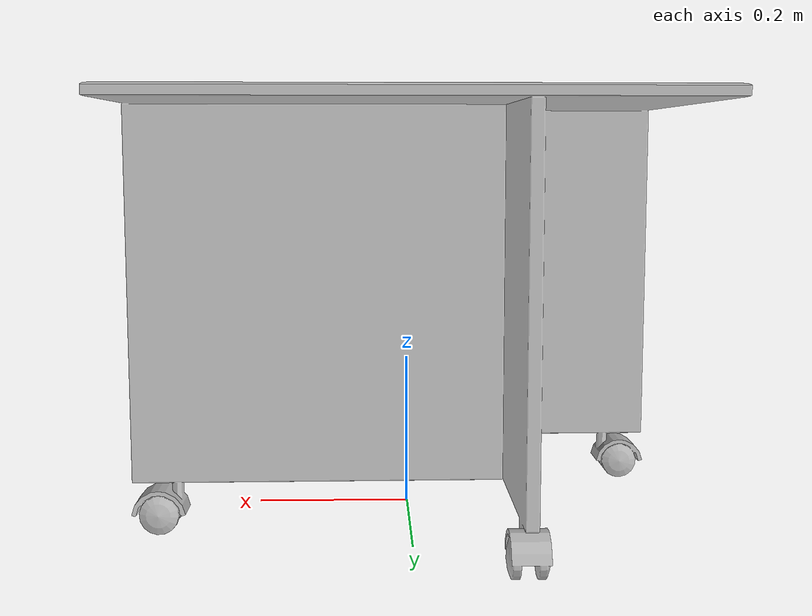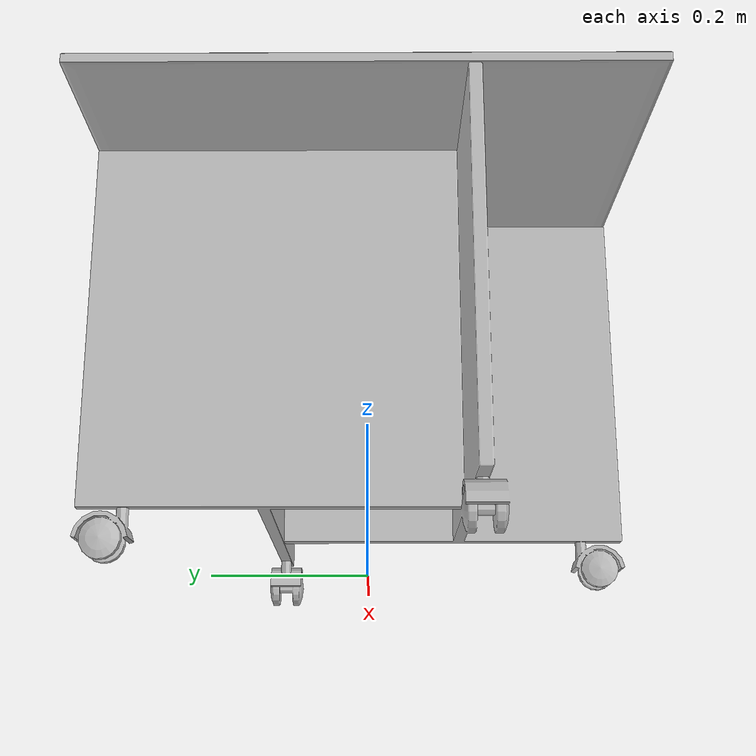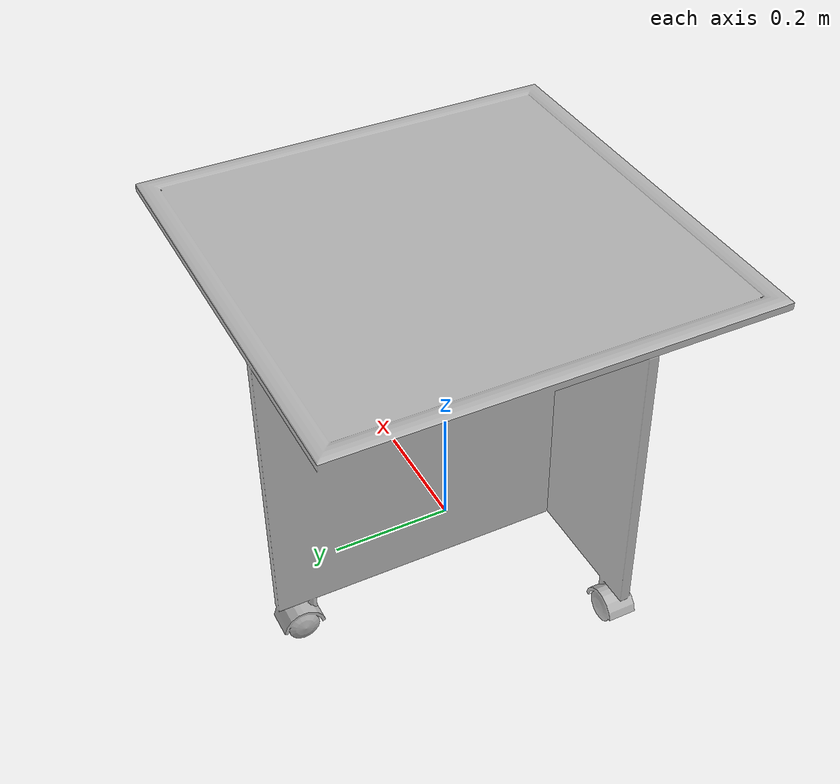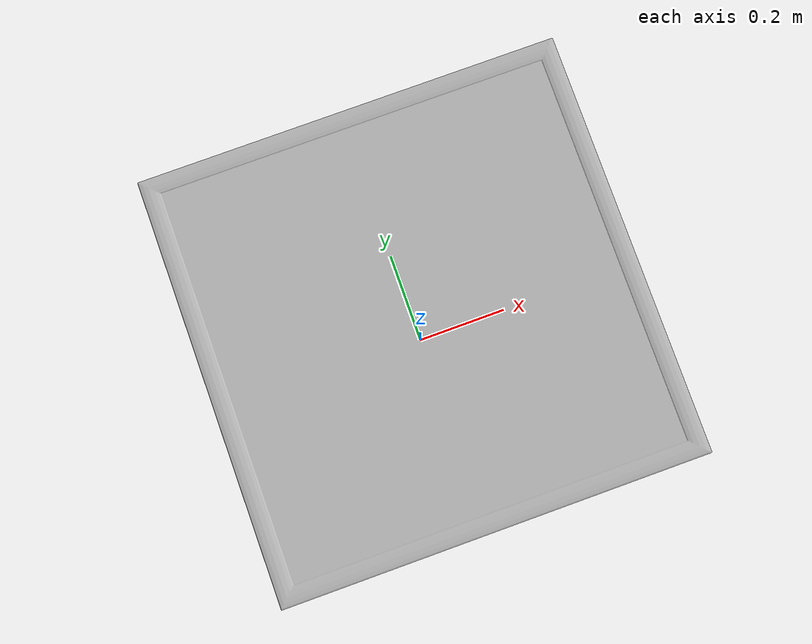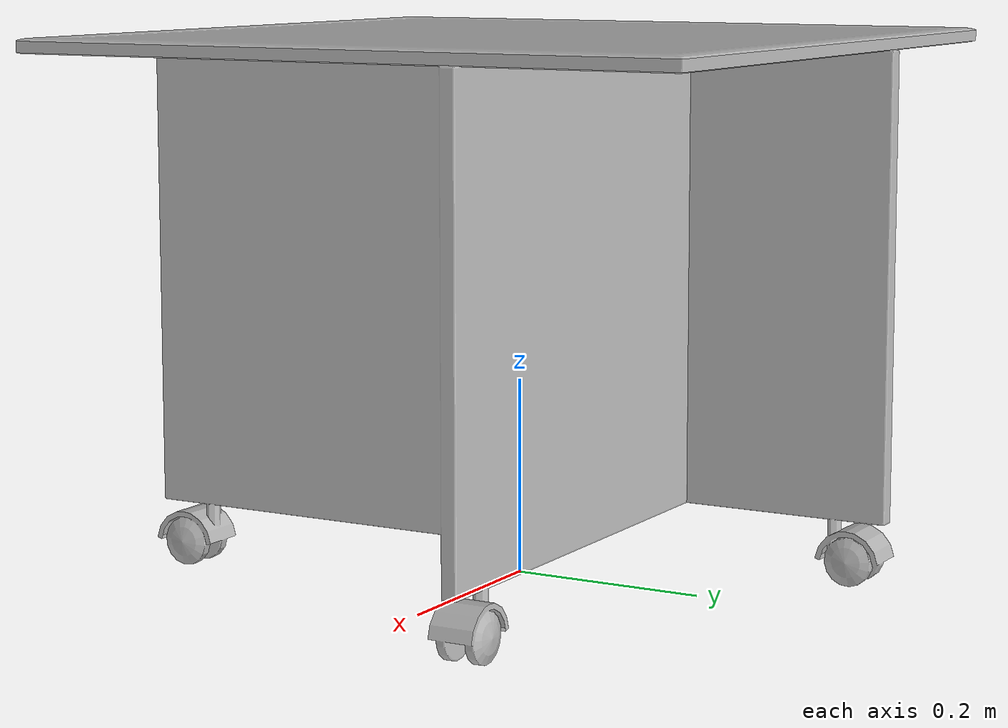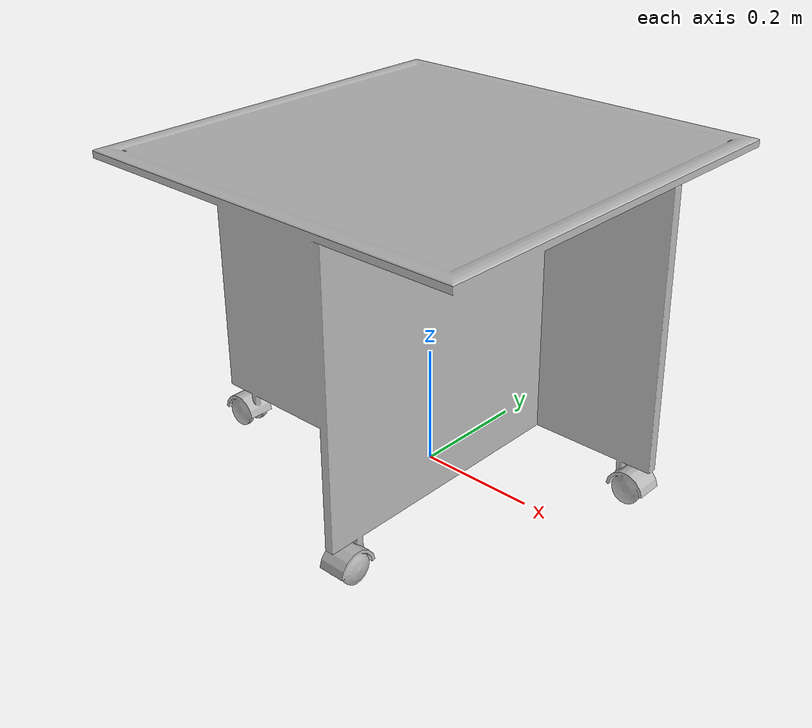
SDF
<?xml version='1.0'?>
<sdf version='1.4'>
  <model name='552'>
    <pose>0 0 0 0 0 0</pose>
    <static>true</static>
    <link name='link'>
      <collision name='collision'>
        <pose>0 0 0 0 0 0</pose>
        <geometry>
          <box>
            <size>0.7 0.7 2</size>
          </box>
        </geometry>
      </collision>
      <visual name='visual'>
        <pose>0 0 0 0 0 0</pose>
        <geometry>
          <mesh><uri>model://552/552.dae</uri></mesh>
        </geometry>
      </visual>
    </link>
  </model>
</sdf>
